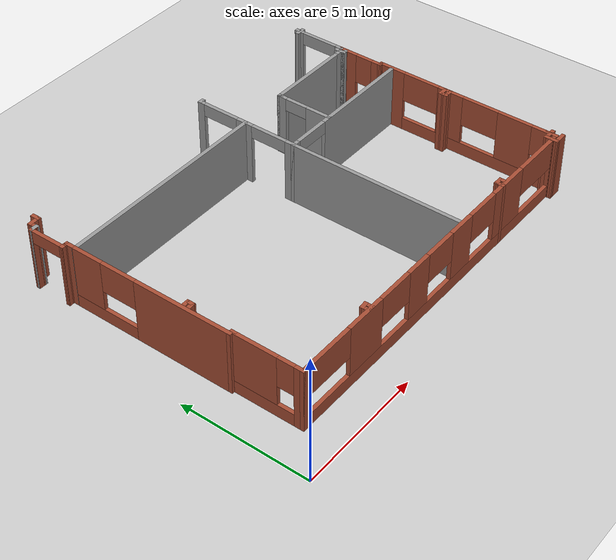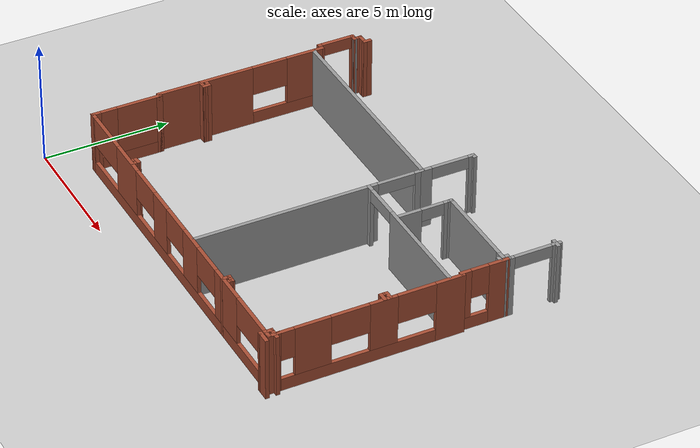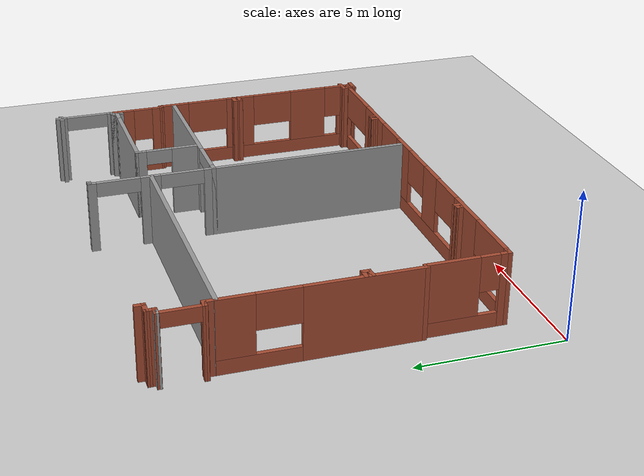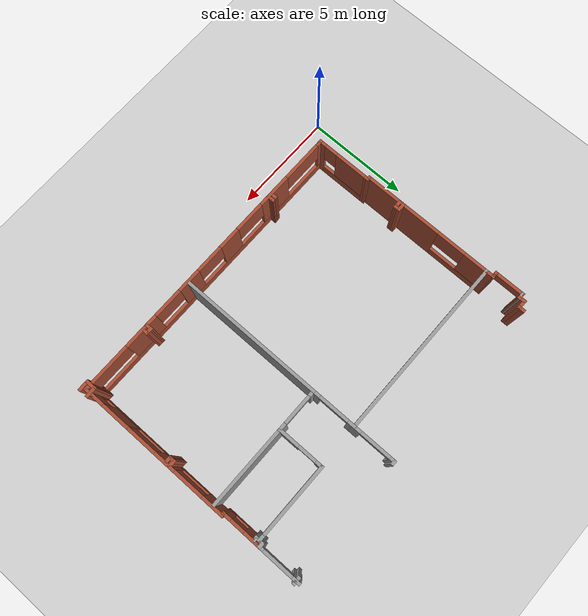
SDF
<sdf version="1.6">
 <world name="default">
  <model name="ground_plane">
   <static>1</static>
   <link name="link">
    <collision name="collision">
     <geometry><plane><normal>0 0 1</normal><size>100 100</size></plane></geometry>
     <surface><friction><ode><mu>100</mu><mu2>50</mu2></ode></friction></surface>
    </collision>
    <visual name="visual">
     <cast_shadows>0</cast_shadows>
     <geometry><plane><normal>0 0 1</normal><size>100 100</size></plane></geometry>
     <material>
      <script><uri>file://media/materials/scripts/gazebo.material</uri><name>Gazebo/Grey</name></script>
     </material>
    </visual>
   </link>
  </model>
  <model name="CVSSP">
   <pose>23.8714 24.094 0 0 -0 0</pose>
   <link name="Wall_521">
    <collision name="Wall_521_Collision">
     <geometry><box><size>0.355195 0.15 2.5</size></box></geometry>
     <pose>0 0 1.25 0 -0 0</pose>
    </collision>
    <visual name="Wall_521_Visual">
     <pose>0 0 1.25 0 -0 0</pose>
     <geometry><box><size>0.355195 0.15 2.5</size></box></geometry>
     <material>
      <script><uri>file://media/materials/scripts/gazebo.material</uri><name>Gazebo/Grey</name></script>
      <ambient>1 1 1 1</ambient>
     </material>
    </visual>
    <pose>-22.5934 -11.8574 0 0 -0 3.09357</pose>
   </link>
   <link name="Wall_537">
    <pose>-8.036 -12.4082 0 0 0 -1.5708</pose>
    <visual name="Wall_537_Visual_0">
     <pose>-0.92041 0 1.25 0 -0 0</pose>
     <geometry><box><size>0.409181 0.15 2.5</size></box></geometry>
     <material>
      <script><uri>file://media/materials/scripts/gazebo.material</uri><name>Gazebo/Grey</name></script>
      <ambient>1 1 1 1</ambient>
     </material>
    </visual>
    <collision name="Wall_537_Collision_0">
     <geometry><box><size>0.409181 0.15 2.5</size></box></geometry>
     <pose>-0.92041 0 1.25 0 -0 0</pose>
    </collision>
    <visual name="Wall_537_Visual_1">
     <pose>0.95091 0 1.25 0 -0 0</pose>
     <geometry><box><size>0.34818 0.15 2.5</size></box></geometry>
     <material>
      <script><uri>file://media/materials/scripts/gazebo.material</uri><name>Gazebo/Grey</name></script>
      <ambient>1 1 1 1</ambient>
     </material>
    </visual>
    <collision name="Wall_537_Collision_1">
     <geometry><box><size>0.34818 0.15 2.5</size></box></geometry>
     <pose>0.95091 0 1.25 0 -0 0</pose>
    </collision>
    <visual name="Wall_537_Visual_2">
     <pose>0.0305 0 2.25 0 -0 0</pose>
     <geometry><box><size>1.49264 0.15 0.5</size></box></geometry>
     <material>
      <script><uri>file://media/materials/scripts/gazebo.material</uri><name>Gazebo/Grey</name></script>
      <ambient>1 1 1 1</ambient>
     </material>
    </visual>
    <collision name="Wall_537_Collision_2">
     <geometry><box><size>1.49264 0.15 0.5</size></box></geometry>
     <pose>0.0305 0 2.25 0 -0 0</pose>
    </collision>
   </link>
   <link name="Wall_541">
    <pose>-8.03948 -14.3557 0 0 0 -1.57468</pose>
    <visual name="Wall_541_Visual_0">
     <pose>-0.567331 0 1.25 0 -0 0</pose>
     <geometry><box><size>0.810426 0.15 2.5</size></box></geometry>
     <material>
      <script><uri>file://media/materials/scripts/gazebo.material</uri><name>Gazebo/Bricks</name></script>
      <ambient>1 1 1 1</ambient>
     </material>
    </visual>
    <collision name="Wall_541_Collision_0">
     <geometry><box><size>0.810426 0.15 2.5</size></box></geometry>
     <pose>-0.567331 0 1.25 0 -0 0</pose>
    </collision>
    <visual name="Wall_541_Visual_1">
     <pose>0.405213 0 0.25 0 -0 0</pose>
     <geometry><box><size>1.13466 0.15 0.5</size></box></geometry>
     <material>
      <script><uri>file://media/materials/scripts/gazebo.material</uri><name>Gazebo/Bricks</name></script>
      <ambient>1 1 1 1</ambient>
     </material>
    </visual>
    <collision name="Wall_541_Collision_1">
     <geometry><box><size>1.13466 0.15 0.5</size></box></geometry>
     <pose>0.405213 0 0.25 0 -0 0</pose>
    </collision>
    <visual name="Wall_541_Visual_2">
     <pose>0.750947 0 1.5 0 -0 0</pose>
     <geometry><box><size>0.443194 0.15 2</size></box></geometry>
     <material>
      <script><uri>file://media/materials/scripts/gazebo.material</uri><name>Gazebo/Bricks</name></script>
      <ambient>1 1 1 1</ambient>
     </material>
    </visual>
    <collision name="Wall_541_Collision_2">
     <geometry><box><size>0.443194 0.15 2</size></box></geometry>
     <pose>0.750947 0 1.5 0 -0 0</pose>
    </collision>
    <visual name="Wall_541_Visual_3">
     <pose>0.183616 0 1.9 0 -0 0</pose>
     <geometry><box><size>0.691468 0.15 1.2</size></box></geometry>
     <material>
      <script><uri>file://media/materials/scripts/gazebo.material</uri><name>Gazebo/Bricks</name></script>
      <ambient>1 1 1 1</ambient>
     </material>
    </visual>
    <collision name="Wall_541_Collision_3">
     <geometry><box><size>0.691468 0.15 1.2</size></box></geometry>
     <pose>0.183616 0 1.9 0 -0 0</pose>
    </collision>
   </link>
   <link name="Wall_542">
    <collision name="Wall_542_Collision">
     <geometry><box><size>0.25 0.15 2.5</size></box></geometry>
     <pose>0 0 1.25 0 -0 0</pose>
    </collision>
    <visual name="Wall_542_Visual">
     <pose>0 0 1.25 0 -0 0</pose>
     <geometry><box><size>0.25 0.15 2.5</size></box></geometry>
     <material>
      <script><uri>file://media/materials/scripts/gazebo.material</uri><name>Gazebo/Bricks</name></script>
      <ambient>1 1 1 1</ambient>
     </material>
    </visual>
    <pose>-7.99297 -15.2533 0 0 -0 0</pose>
   </link>
   <link name="Wall_543">
    <pose>-7.94297 -18.8033 0 0 0 -1.5708</pose>
    <visual name="Wall_543_Visual_0">
     <pose>-3.05686 0 1.25 0 -0 0</pose>
     <geometry><box><size>1.13628 0.15 2.5</size></box></geometry>
     <material>
      <script><uri>file://media/materials/scripts/gazebo.material</uri><name>Gazebo/Bricks</name></script>
      <ambient>1 1 1 1</ambient>
     </material>
    </visual>
    <collision name="Wall_543_Collision_0">
     <geometry><box><size>1.13628 0.15 2.5</size></box></geometry>
     <pose>-3.05686 0 1.25 0 -0 0</pose>
    </collision>
    <visual name="Wall_543_Visual_1">
     <pose>0.568139 0 0.25 0 -0 0</pose>
     <geometry><box><size>6.11372 0.15 0.5</size></box></geometry>
     <material>
      <script><uri>file://media/materials/scripts/gazebo.material</uri><name>Gazebo/Bricks</name></script>
      <ambient>1 1 1 1</ambient>
     </material>
    </visual>
    <collision name="Wall_543_Collision_1">
     <geometry><box><size>6.11372 0.15 0.5</size></box></geometry>
     <pose>0.568139 0 0.25 0 -0 0</pose>
    </collision>
    <visual name="Wall_543_Visual_2">
     <pose>-0.462946 0 1.5 0 -0 0</pose>
     <geometry><box><size>1.07655 0.15 2</size></box></geometry>
     <material>
      <script><uri>file://media/materials/scripts/gazebo.material</uri><name>Gazebo/Bricks</name></script>
      <ambient>1 1 1 1</ambient>
     </material>
    </visual>
    <collision name="Wall_543_Collision_2">
     <geometry><box><size>1.07655 0.15 2</size></box></geometry>
     <pose>-0.462946 0 1.5 0 -0 0</pose>
    </collision>
    <visual name="Wall_543_Visual_3">
     <pose>2.25573 0 1.5 0 -0 0</pose>
     <geometry><box><size>1.39706 0.15 2</size></box></geometry>
     <material>
      <script><uri>file://media/materials/scripts/gazebo.material</uri><name>Gazebo/Bricks</name></script>
      <ambient>1 1 1 1</ambient>
     </material>
    </visual>
    <collision name="Wall_543_Collision_3">
     <geometry><box><size>1.39706 0.15 2</size></box></geometry>
     <pose>2.25573 0 1.5 0 -0 0</pose>
    </collision>
    <visual name="Wall_543_Visual_4">
     <pose>2.25573 0 1.5 0 -0 0</pose>
     <geometry><box><size>1.39706 0.15 2</size></box></geometry>
     <material>
      <script><uri>file://media/materials/scripts/gazebo.material</uri><name>Gazebo/Bricks</name></script>
      <ambient>1 1 1 1</ambient>
     </material>
    </visual>
    <collision name="Wall_543_Collision_4">
     <geometry><box><size>1.39706 0.15 2</size></box></geometry>
     <pose>2.25573 0 1.5 0 -0 0</pose>
    </collision>
    <visual name="Wall_543_Visual_5">
     <pose>-1.74497 0 1.9 0 -0 0</pose>
     <geometry><box><size>1.4875 0.15 1.2</size></box></geometry>
     <material>
      <script><uri>file://media/materials/scripts/gazebo.material</uri><name>Gazebo/Bricks</name></script>
      <ambient>1 1 1 1</ambient>
     </material>
    </visual>
    <collision name="Wall_543_Collision_5">
     <geometry><box><size>1.4875 0.15 1.2</size></box></geometry>
     <pose>-1.74497 0 1.9 0 -0 0</pose>
    </collision>
    <visual name="Wall_543_Visual_6">
     <pose>0.816261 0 1.9 0 -0 0</pose>
     <geometry><box><size>1.48187 0.15 1.2</size></box></geometry>
     <material>
      <script><uri>file://media/materials/scripts/gazebo.material</uri><name>Gazebo/Bricks</name></script>
      <ambient>1 1 1 1</ambient>
     </material>
    </visual>
    <collision name="Wall_543_Collision_6">
     <geometry><box><size>1.48187 0.15 1.2</size></box></geometry>
     <pose>0.816261 0 1.9 0 -0 0</pose>
    </collision>
    <visual name="Wall_543_Visual_7">
     <pose>3.28963 0 1.9 0 -0 0</pose>
     <geometry><box><size>0.670742 0.15 1.2</size></box></geometry>
     <material>
      <script><uri>file://media/materials/scripts/gazebo.material</uri><name>Gazebo/Bricks</name></script>
      <ambient>1 1 1 1</ambient>
     </material>
    </visual>
    <collision name="Wall_543_Collision_7">
     <geometry><box><size>0.670742 0.15 1.2</size></box></geometry>
     <pose>3.28963 0 1.9 0 -0 0</pose>
    </collision>
    <visual name="Wall_543_Visual_8">
     <pose>3.28963 0 1.9 0 -0 0</pose>
     <geometry><box><size>0.670742 0.15 1.2</size></box></geometry>
     <material>
      <script><uri>file://media/materials/scripts/gazebo.material</uri><name>Gazebo/Bricks</name></script>
      <ambient>1 1 1 1</ambient>
     </material>
    </visual>
    <collision name="Wall_543_Collision_8">
     <geometry><box><size>0.670742 0.15 1.2</size></box></geometry>
     <pose>3.28963 0 1.9 0 -0 0</pose>
    </collision>
   </link>
   <link name="Wall_544">
    <collision name="Wall_544_Collision">
     <geometry><box><size>0.5 0.15 2.5</size></box></geometry>
     <pose>0 0 1.25 0 -0 0</pose>
    </collision>
    <visual name="Wall_544_Visual">
     <pose>0 0 1.25 0 -0 0</pose>
     <geometry><box><size>0.5 0.15 2.5</size></box></geometry>
     <material>
      <script><uri>file://media/materials/scripts/gazebo.material</uri><name>Gazebo/Bricks</name></script>
      <ambient>1 1 1 1</ambient>
     </material>
    </visual>
    <pose>-7.94297 -22.5283 0 0 0 -1.5708</pose>
   </link>
   <link name="Wall_545">
    <pose>-15.118 -22.7033 0 0 -0 3.14159</pose>
    <visual name="Wall_545_Visual_0">
     <pose>-7.03884 0 1.25 0 -0 0</pose>
     <geometry><box><size>0.42232 0.15 2.5</size></box></geometry>
     <material>
      <script><uri>file://media/materials/scripts/gazebo.material</uri><name>Gazebo/Bricks</name></script>
      <ambient>1 1 1 1</ambient>
     </material>
    </visual>
    <collision name="Wall_545_Collision_0">
     <geometry><box><size>0.42232 0.15 2.5</size></box></geometry>
     <pose>-7.03884 0 1.25 0 -0 0</pose>
    </collision>
    <visual name="Wall_545_Visual_1">
     <pose>0.21116 0 0.25 0 -0 0</pose>
     <geometry><box><size>14.0777 0.15 0.5</size></box></geometry>
     <material>
      <script><uri>file://media/materials/scripts/gazebo.material</uri><name>Gazebo/Bricks</name></script>
      <ambient>1 1 1 1</ambient>
     </material>
    </visual>
    <collision name="Wall_545_Collision_1">
     <geometry><box><size>14.0777 0.15 0.5</size></box></geometry>
     <pose>0.21116 0 0.25 0 -0 0</pose>
    </collision>
    <visual name="Wall_545_Visual_2">
     <pose>-3.98026 0 1.5 0 -0 0</pose>
     <geometry><box><size>1.72991 0.15 2</size></box></geometry>
     <material>
      <script><uri>file://media/materials/scripts/gazebo.material</uri><name>Gazebo/Bricks</name></script>
      <ambient>1 1 1 1</ambient>
     </material>
    </visual>
    <collision name="Wall_545_Collision_2">
     <geometry><box><size>1.72991 0.15 2</size></box></geometry>
     <pose>-3.98026 0 1.5 0 -0 0</pose>
    </collision>
    <visual name="Wall_545_Visual_3">
     <pose>-1.12108 0 1.5 0 -0 0</pose>
     <geometry><box><size>1.14417 0.15 2</size></box></geometry>
     <material>
      <script><uri>file://media/materials/scripts/gazebo.material</uri><name>Gazebo/Bricks</name></script>
      <ambient>1 1 1 1</ambient>
     </material>
    </visual>
    <collision name="Wall_545_Collision_3">
     <geometry><box><size>1.14417 0.15 2</size></box></geometry>
     <pose>-1.12108 0 1.5 0 -0 0</pose>
    </collision>
    <visual name="Wall_545_Visual_4">
     <pose>1.34801 0 1.5 0 -0 0</pose>
     <geometry><box><size>1.07936 0.15 2</size></box></geometry>
     <material>
      <script><uri>file://media/materials/scripts/gazebo.material</uri><name>Gazebo/Bricks</name></script>
      <ambient>1 1 1 1</ambient>
     </material>
    </visual>
    <collision name="Wall_545_Collision_4">
     <geometry><box><size>1.07936 0.15 2</size></box></geometry>
     <pose>1.34801 0 1.5 0 -0 0</pose>
    </collision>
    <visual name="Wall_545_Visual_5">
     <pose>4.2027 0 1.5 0 -0 0</pose>
     <geometry><box><size>1.66909 0.15 2</size></box></geometry>
     <material>
      <script><uri>file://media/materials/scripts/gazebo.material</uri><name>Gazebo/Bricks</name></script>
      <ambient>1 1 1 1</ambient>
     </material>
    </visual>
    <collision name="Wall_545_Collision_5">
     <geometry><box><size>1.66909 0.15 2</size></box></geometry>
     <pose>4.2027 0 1.5 0 -0 0</pose>
    </collision>
    <visual name="Wall_545_Visual_6">
     <pose>7.13335 0 1.5 0 -0 0</pose>
     <geometry><box><size>0.233292 0.15 2</size></box></geometry>
     <material>
      <script><uri>file://media/materials/scripts/gazebo.material</uri><name>Gazebo/Bricks</name></script>
      <ambient>1 1 1 1</ambient>
     </material>
    </visual>
    <collision name="Wall_545_Collision_6">
     <geometry><box><size>0.233292 0.15 2</size></box></geometry>
     <pose>7.13335 0 1.5 0 -0 0</pose>
    </collision>
    <visual name="Wall_545_Visual_7">
     <pose>-5.83645 0 1.9 0 -0 0</pose>
     <geometry><box><size>1.98247 0.15 1.2</size></box></geometry>
     <material>
      <script><uri>file://media/materials/scripts/gazebo.material</uri><name>Gazebo/Bricks</name></script>
      <ambient>1 1 1 1</ambient>
     </material>
    </visual>
    <collision name="Wall_545_Collision_7">
     <geometry><box><size>1.98247 0.15 1.2</size></box></geometry>
     <pose>-5.83645 0 1.9 0 -0 0</pose>
    </collision>
    <visual name="Wall_545_Visual_8">
     <pose>-2.40424 0 1.9 0 -0 0</pose>
     <geometry><box><size>1.42213 0.15 1.2</size></box></geometry>
     <material>
      <script><uri>file://media/materials/scripts/gazebo.material</uri><name>Gazebo/Bricks</name></script>
      <ambient>1 1 1 1</ambient>
     </material>
    </visual>
    <collision name="Wall_545_Collision_8">
     <geometry><box><size>1.42213 0.15 1.2</size></box></geometry>
     <pose>-2.40424 0 1.9 0 -0 0</pose>
    </collision>
    <visual name="Wall_545_Visual_9">
     <pose>0.129664 0 1.9 0 -0 0</pose>
     <geometry><box><size>1.35733 0.15 1.2</size></box></geometry>
     <material>
      <script><uri>file://media/materials/scripts/gazebo.material</uri><name>Gazebo/Bricks</name></script>
      <ambient>1 1 1 1</ambient>
     </material>
    </visual>
    <collision name="Wall_545_Collision_9">
     <geometry><box><size>1.35733 0.15 1.2</size></box></geometry>
     <pose>0.129664 0 1.9 0 -0 0</pose>
    </collision>
    <visual name="Wall_545_Visual_10">
     <pose>2.62792 0 1.9 0 -0 0</pose>
     <geometry><box><size>1.48046 0.15 1.2</size></box></geometry>
     <material>
      <script><uri>file://media/materials/scripts/gazebo.material</uri><name>Gazebo/Bricks</name></script>
      <ambient>1 1 1 1</ambient>
     </material>
    </visual>
    <collision name="Wall_545_Collision_10">
     <geometry><box><size>1.48046 0.15 1.2</size></box></geometry>
     <pose>2.62792 0 1.9 0 -0 0</pose>
    </collision>
    <visual name="Wall_545_Visual_11">
     <pose>6.02698 0 1.9 0 -0 0</pose>
     <geometry><box><size>1.97946 0.15 1.2</size></box></geometry>
     <material>
      <script><uri>file://media/materials/scripts/gazebo.material</uri><name>Gazebo/Bricks</name></script>
      <ambient>1 1 1 1</ambient>
     </material>
    </visual>
    <collision name="Wall_545_Collision_11">
     <geometry><box><size>1.97946 0.15 1.2</size></box></geometry>
     <pose>6.02698 0 1.9 0 -0 0</pose>
    </collision>
   </link>
   <link name="Wall_546">
    <collision name="Wall_546_Collision">
     <geometry><box><size>0.25 0.15 2.5</size></box></geometry>
     <pose>0 0 1.25 0 -0 0</pose>
    </collision>
    <visual name="Wall_546_Visual">
     <pose>0 0 1.25 0 -0 0</pose>
     <geometry><box><size>0.25 0.15 2.5</size></box></geometry>
     <material>
      <script><uri>file://media/materials/scripts/gazebo.material</uri><name>Gazebo/Bricks</name></script>
      <ambient>1 1 1 1</ambient>
     </material>
    </visual>
    <pose>-22.343 -22.7033 0 0 -0 3.14159</pose>
   </link>
   <link name="Wall_547">
    <pose>-22.393 -21.4033 0 0 -0 1.5708</pose>
    <visual name="Wall_547_Visual_0">
     <pose>-1.18725 0 1.25 0 -0 0</pose>
     <geometry><box><size>0.375498 0.15 2.5</size></box></geometry>
     <material>
      <script><uri>file://media/materials/scripts/gazebo.material</uri><name>Gazebo/Bricks</name></script>
      <ambient>1 1 1 1</ambient>
     </material>
    </visual>
    <collision name="Wall_547_Collision_0">
     <geometry><box><size>0.375498 0.15 2.5</size></box></geometry>
     <pose>-1.18725 0 1.25 0 -0 0</pose>
    </collision>
    <visual name="Wall_547_Visual_1">
     <pose>0.187749 0 0.25 0 -0 0</pose>
     <geometry><box><size>2.3745 0.15 0.5</size></box></geometry>
     <material>
      <script><uri>file://media/materials/scripts/gazebo.material</uri><name>Gazebo/Bricks</name></script>
      <ambient>1 1 1 1</ambient>
     </material>
    </visual>
    <collision name="Wall_547_Collision_1">
     <geometry><box><size>2.3745 0.15 0.5</size></box></geometry>
     <pose>0.187749 0 0.25 0 -0 0</pose>
    </collision>
    <visual name="Wall_547_Visual_2">
     <pose>0.509982 0 1.5 0 -0 0</pose>
     <geometry><box><size>1.73004 0.15 2</size></box></geometry>
     <material>
      <script><uri>file://media/materials/scripts/gazebo.material</uri><name>Gazebo/Bricks</name></script>
      <ambient>1 1 1 1</ambient>
     </material>
    </visual>
    <collision name="Wall_547_Collision_2">
     <geometry><box><size>1.73004 0.15 2</size></box></geometry>
     <pose>0.509982 0 1.5 0 -0 0</pose>
    </collision>
    <visual name="Wall_547_Visual_3">
     <pose>-0.677269 0 1.9 0 -0 0</pose>
     <geometry><box><size>0.644466 0.15 1.2</size></box></geometry>
     <material>
      <script><uri>file://media/materials/scripts/gazebo.material</uri><name>Gazebo/Bricks</name></script>
      <ambient>1 1 1 1</ambient>
     </material>
    </visual>
    <collision name="Wall_547_Collision_3">
     <geometry><box><size>0.644466 0.15 1.2</size></box></geometry>
     <pose>-0.677269 0 1.9 0 -0 0</pose>
    </collision>
   </link>
   <link name="Wall_548">
    <collision name="Wall_548_Collision">
     <geometry><box><size>0.25 0.15 2.5</size></box></geometry>
     <pose>0 0 1.25 0 -0 0</pose>
    </collision>
    <visual name="Wall_548_Visual">
     <pose>0 0 1.25 0 -0 0</pose>
     <geometry><box><size>0.25 0.15 2.5</size></box></geometry>
     <material>
      <script><uri>file://media/materials/scripts/gazebo.material</uri><name>Gazebo/Bricks</name></script>
      <ambient>1 1 1 1</ambient>
     </material>
    </visual>
    <pose>-22.393 -20.0533 0 0 -0 1.5708</pose>
   </link>
   <link name="Wall_549">
    <collision name="Wall_549_Collision">
     <geometry><box><size>0.25 0.15 2.5</size></box></geometry>
     <pose>0 0 1.25 0 -0 0</pose>
    </collision>
    <visual name="Wall_549_Visual">
     <pose>0 0 1.25 0 -0 0</pose>
     <geometry><box><size>0.25 0.15 2.5</size></box></geometry>
     <material>
      <script><uri>file://media/materials/scripts/gazebo.material</uri><name>Gazebo/Bricks</name></script>
      <ambient>1 1 1 1</ambient>
     </material>
    </visual>
    <pose>-22.443 -20.0033 0 0 -0 3.14159</pose>
   </link>
   <link name="Wall_550">
    <pose>-22.493 -16.8108 0 0 -0 1.5708</pose>
    <visual name="Wall_550_Visual_0">
     <pose>-1.31523 0 1.25 0 -0 0</pose>
     <geometry><box><size>3.90453 0.15 2.5</size></box></geometry>
     <material>
      <script><uri>file://media/materials/scripts/gazebo.material</uri><name>Gazebo/Bricks</name></script>
      <ambient>1 1 1 1</ambient>
     </material>
    </visual>
    <collision name="Wall_550_Collision_0">
     <geometry><box><size>3.90453 0.15 2.5</size></box></geometry>
     <pose>-1.31523 0 1.25 0 -0 0</pose>
    </collision>
    <visual name="Wall_550_Visual_1">
     <pose>1.95226 0 0.25 0 -0 0</pose>
     <geometry><box><size>2.63045 0.15 0.5</size></box></geometry>
     <material>
      <script><uri>file://media/materials/scripts/gazebo.material</uri><name>Gazebo/Bricks</name></script>
      <ambient>1 1 1 1</ambient>
     </material>
    </visual>
    <collision name="Wall_550_Collision_1">
     <geometry><box><size>2.63045 0.15 0.5</size></box></geometry>
     <pose>1.95226 0 0.25 0 -0 0</pose>
    </collision>
    <visual name="Wall_550_Visual_2">
     <pose>2.66009 0 1.5 0 -0 0</pose>
     <geometry><box><size>1.2148 0.15 2</size></box></geometry>
     <material>
      <script><uri>file://media/materials/scripts/gazebo.material</uri><name>Gazebo/Bricks</name></script>
      <ambient>1 1 1 1</ambient>
     </material>
    </visual>
    <collision name="Wall_550_Collision_2">
     <geometry><box><size>1.2148 0.15 2</size></box></geometry>
     <pose>2.66009 0 1.5 0 -0 0</pose>
    </collision>
    <visual name="Wall_550_Visual_3">
     <pose>1.34487 0 1.9 0 -0 0</pose>
     <geometry><box><size>1.41565 0.15 1.2</size></box></geometry>
     <material>
      <script><uri>file://media/materials/scripts/gazebo.material</uri><name>Gazebo/Bricks</name></script>
      <ambient>1 1 1 1</ambient>
     </material>
    </visual>
    <collision name="Wall_550_Collision_3">
     <geometry><box><size>1.41565 0.15 1.2</size></box></geometry>
     <pose>1.34487 0 1.9 0 -0 0</pose>
    </collision>
   </link>
   <link name="Wall_551">
    <collision name="Wall_551_Collision">
     <geometry><box><size>8.71502 0.15 2.5</size></box></geometry>
     <pose>0 0 1.25 0 -0 0</pose>
    </collision>
    <visual name="Wall_551_Visual">
     <pose>0 0 1.25 0 -0 0</pose>
     <geometry><box><size>8.71502 0.15 2.5</size></box></geometry>
     <material>
      <script><uri>file://media/materials/scripts/gazebo.material</uri><name>Gazebo/Grey</name></script>
      <ambient>0.588235 0.588235 0.588235 1</ambient>
     </material>
    </visual>
    <pose>-18.2105 -13.6008 0 0 -0 0</pose>
   </link>
   <link name="Wall_552">
    <pose>-13.9279 -14.6858 0 0 0 -1.57076</pose>
    <visual name="Wall_552_Visual_0">
     <pose>-0.953762 0 1.25 0 -0 0</pose>
     <geometry><box><size>0.377528 0.15 2.5</size></box></geometry>
     <material>
      <script><uri>file://media/materials/scripts/gazebo.material</uri><name>Gazebo/Grey</name></script>
      <ambient>0.588235 0.588235 0.588235 1</ambient>
     </material>
    </visual>
    <collision name="Wall_552_Collision_0">
     <geometry><box><size>0.377528 0.15 2.5</size></box></geometry>
     <pose>-0.953762 0 1.25 0 -0 0</pose>
    </collision>
    <visual name="Wall_552_Visual_1">
     <pose>0.934646 0 1.25 0 -0 0</pose>
     <geometry><box><size>0.415759 0.15 2.5</size></box></geometry>
     <material>
      <script><uri>file://media/materials/scripts/gazebo.material</uri><name>Gazebo/Grey</name></script>
      <ambient>0.588235 0.588235 0.588235 1</ambient>
     </material>
    </visual>
    <collision name="Wall_552_Collision_1">
     <geometry><box><size>0.415759 0.15 2.5</size></box></geometry>
     <pose>0.934646 0 1.25 0 -0 0</pose>
    </collision>
    <visual name="Wall_552_Visual_2">
     <pose>-0.019115 0 2.25 0 -0 0</pose>
     <geometry><box><size>1.49176 0.15 0.5</size></box></geometry>
     <material>
      <script><uri>file://media/materials/scripts/gazebo.material</uri><name>Gazebo/Grey</name></script>
      <ambient>0.588235 0.588235 0.588235 1</ambient>
     </material>
    </visual>
    <collision name="Wall_552_Collision_2">
     <geometry><box><size>1.49176 0.15 0.5</size></box></geometry>
     <pose>-0.019115 0 2.25 0 -0 0</pose>
    </collision>
   </link>
   <link name="Wall_553">
    <pose>-10.9854 -15.7533 0 0 0 -3e-06</pose>
    <visual name="Wall_553_Visual_0">
     <pose>-2.85002 0 1.25 0 -0 0</pose>
     <geometry><box><size>0.334935 0.15 2.5</size></box></geometry>
     <material>
      <script><uri>file://media/materials/scripts/gazebo.material</uri><name>Gazebo/Grey</name></script>
      <ambient>0.588235 0.588235 0.588235 1</ambient>
     </material>
    </visual>
    <collision name="Wall_553_Collision_0">
     <geometry><box><size>0.334935 0.15 2.5</size></box></geometry>
     <pose>-2.85002 0 1.25 0 -0 0</pose>
    </collision>
    <visual name="Wall_553_Visual_1">
     <pose>0.893624 0 1.25 0 -0 0</pose>
     <geometry><box><size>4.24773 0.15 2.5</size></box></geometry>
     <material>
      <script><uri>file://media/materials/scripts/gazebo.material</uri><name>Gazebo/Grey</name></script>
      <ambient>0.588235 0.588235 0.588235 1</ambient>
     </material>
    </visual>
    <collision name="Wall_553_Collision_1">
     <geometry><box><size>4.24773 0.15 2.5</size></box></geometry>
     <pose>0.893624 0 1.25 0 -0 0</pose>
    </collision>
    <visual name="Wall_553_Visual_2">
     <pose>-1.9564 0 2.25 0 -0 0</pose>
     <geometry><box><size>1.45231 0.15 0.5</size></box></geometry>
     <material>
      <script><uri>file://media/materials/scripts/gazebo.material</uri><name>Gazebo/Grey</name></script>
      <ambient>0.588235 0.588235 0.588235 1</ambient>
     </material>
    </visual>
    <collision name="Wall_553_Collision_2">
     <geometry><box><size>1.45231 0.15 0.5</size></box></geometry>
     <pose>-1.9564 0 2.25 0 -0 0</pose>
    </collision>
   </link>
   <link name="Wall_555">
    <pose>-13.9279 -12.5683 0 0 -0 1.5708</pose>
    <visual name="Wall_555_Visual_0">
     <pose>-0.893147 0 1.25 0 -0 0</pose>
     <geometry><box><size>0.463706 0.15 2.5</size></box></geometry>
     <material>
      <script><uri>file://media/materials/scripts/gazebo.material</uri><name>Gazebo/Grey</name></script>
      <ambient>0.588235 0.588235 0.588235 1</ambient>
     </material>
    </visual>
    <collision name="Wall_555_Collision_0">
     <geometry><box><size>0.463706 0.15 2.5</size></box></geometry>
     <pose>-0.893147 0 1.25 0 -0 0</pose>
    </collision>
    <visual name="Wall_555_Visual_1">
     <pose>0.977735 0 1.25 0 -0 0</pose>
     <geometry><box><size>0.29453 0.15 2.5</size></box></geometry>
     <material>
      <script><uri>file://media/materials/scripts/gazebo.material</uri><name>Gazebo/Grey</name></script>
      <ambient>0.588235 0.588235 0.588235 1</ambient>
     </material>
    </visual>
    <collision name="Wall_555_Collision_1">
     <geometry><box><size>0.29453 0.15 2.5</size></box></geometry>
     <pose>0.977735 0 1.25 0 -0 0</pose>
    </collision>
    <visual name="Wall_555_Visual_2">
     <pose>0.084588 0 2.25 0 -0 0</pose>
     <geometry><box><size>1.49177 0.15 0.5</size></box></geometry>
     <material>
      <script><uri>file://media/materials/scripts/gazebo.material</uri><name>Gazebo/Grey</name></script>
      <ambient>0.588235 0.588235 0.588235 1</ambient>
     </material>
    </visual>
    <collision name="Wall_555_Collision_2">
     <geometry><box><size>1.49177 0.15 0.5</size></box></geometry>
     <pose>0.084588 0 2.25 0 -0 0</pose>
    </collision>
   </link>
   <link name="Wall_556">
    <collision name="Wall_556_Collision">
     <geometry><box><size>0.25 0.15 2.5</size></box></geometry>
     <pose>0 0 1.25 0 -0 0</pose>
    </collision>
    <visual name="Wall_556_Visual">
     <pose>0 0 1.25 0 -0 0</pose>
     <geometry><box><size>0.25 0.15 2.5</size></box></geometry>
     <material>
      <script><uri>file://media/materials/scripts/gazebo.material</uri><name>Gazebo/Grey</name></script>
      <ambient>1 1 1 1</ambient>
     </material>
    </visual>
    <pose>-13.8779 -11.5183 0 0 -0 0</pose>
   </link>
   <link name="Wall_566">
    <pose>-11.8858 -14.6877 0 0 -0 1.5708</pose>
    <visual name="Wall_566_Visual_0">
     <pose>-0.599474 0 1.25 0 -0 0</pose>
     <geometry><box><size>1.05105 0.15 2.5</size></box></geometry>
     <material>
      <script><uri>file://media/materials/scripts/gazebo.material</uri><name>Gazebo/Grey</name></script>
      <ambient>0.588235 0.588235 0.588235 1</ambient>
     </material>
    </visual>
    <collision name="Wall_566_Collision_0">
     <geometry><box><size>1.05105 0.15 2.5</size></box></geometry>
     <pose>-0.599474 0 1.25 0 -0 0</pose>
    </collision>
    <visual name="Wall_566_Visual_1">
     <pose>0.975526 0 1.25 0 -0 0</pose>
     <geometry><box><size>0.298948 0.15 2.5</size></box></geometry>
     <material>
      <script><uri>file://media/materials/scripts/gazebo.material</uri><name>Gazebo/Grey</name></script>
      <ambient>0.588235 0.588235 0.588235 1</ambient>
     </material>
    </visual>
    <collision name="Wall_566_Collision_1">
     <geometry><box><size>0.298948 0.15 2.5</size></box></geometry>
     <pose>0.975526 0 1.25 0 -0 0</pose>
    </collision>
    <visual name="Wall_566_Visual_2">
     <pose>0.376052 0 2.25 0 -0 0</pose>
     <geometry><box><size>0.9 0.15 0.5</size></box></geometry>
     <material>
      <script><uri>file://media/materials/scripts/gazebo.material</uri><name>Gazebo/Grey</name></script>
      <ambient>0.588235 0.588235 0.588235 1</ambient>
     </material>
    </visual>
    <collision name="Wall_566_Collision_2">
     <geometry><box><size>0.9 0.15 0.5</size></box></geometry>
     <pose>0.376052 0 2.25 0 -0 0</pose>
    </collision>
   </link>
   <link name="Wall_567">
    <collision name="Wall_567_Collision">
     <geometry><box><size>0.25 0.15 2.5</size></box></geometry>
     <pose>0 0 1.25 0 -0 0</pose>
    </collision>
    <visual name="Wall_567_Visual">
     <pose>0 0 1.25 0 -0 0</pose>
     <geometry><box><size>0.25 0.15 2.5</size></box></geometry>
     <material>
      <script><uri>file://media/materials/scripts/gazebo.material</uri><name>Gazebo/Grey</name></script>
      <ambient>1 1 1 1</ambient>
     </material>
    </visual>
    <pose>-11.8858 -13.5877 0 0 -0 1.5708</pose>
   </link>
   <link name="Wall_568">
    <collision name="Wall_568_Collision">
     <geometry><box><size>3.5 0.15 2.5</size></box></geometry>
     <pose>0 0 1.25 0 -0 0</pose>
    </collision>
    <visual name="Wall_568_Visual">
     <pose>0 0 1.25 0 -0 0</pose>
     <geometry><box><size>3.5 0.15 2.5</size></box></geometry>
     <material>
      <script><uri>file://media/materials/scripts/gazebo.material</uri><name>Gazebo/Grey</name></script>
      <ambient>0.588235 0.588235 0.588235 1</ambient>
     </material>
    </visual>
    <pose>-10.2108 -13.5377 0 0 -0 0</pose>
   </link>
   <link name="Wall_569">
    <collision name="Wall_569_Collision">
     <geometry><box><size>0.476583 0.15 2.5</size></box></geometry>
     <pose>0 0 1.25 0 -0 0</pose>
    </collision>
    <visual name="Wall_569_Visual">
     <pose>0 0 1.25 0 -0 0</pose>
     <geometry><box><size>0.476583 0.15 2.5</size></box></geometry>
     <material>
      <script><uri>file://media/materials/scripts/gazebo.material</uri><name>Gazebo/Grey</name></script>
      <ambient>1 1 1 1</ambient>
     </material>
    </visual>
    <pose>-8.37248 -13.54 0 0 0 -0.014239</pose>
   </link>
   <link name="Wall_570">
    <collision name="Wall_570_Collision">
     <geometry><box><size>0.307067 0.15 2.5</size></box></geometry>
     <pose>0 0 1.25 0 -0 0</pose>
    </collision>
    <visual name="Wall_570_Visual">
     <pose>0 0 1.25 0 -0 0</pose>
     <geometry><box><size>0.307067 0.15 2.5</size></box></geometry>
     <material>
      <script><uri>file://media/materials/scripts/gazebo.material</uri><name>Gazebo/Grey</name></script>
      <ambient>1 1 1 1</ambient>
     </material>
    </visual>
    <pose>-8.20921 -13.6208 0 0 0 -1.5708</pose>
   </link>
   <link name="Wall_571">
    <collision name="Wall_571_Collision">
     <geometry><box><size>0.25 0.15 2.5</size></box></geometry>
     <pose>0 0 1.25 0 -0 0</pose>
    </collision>
    <visual name="Wall_571_Visual">
     <pose>0 0 1.25 0 -0 0</pose>
     <geometry><box><size>0.25 0.15 2.5</size></box></geometry>
     <material>
      <script><uri>file://media/materials/scripts/gazebo.material</uri><name>Gazebo/Grey</name></script>
      <ambient>1 1 1 1</ambient>
     </material>
    </visual>
    <pose>-8.15921 -13.695 0 0 -0 0</pose>
   </link>
   <link name="Wall_575">
    <collision name="Wall_575_Collision">
     <geometry><box><size>0.275673 0.15 2.5</size></box></geometry>
     <pose>0 0 1.25 0 -0 0</pose>
    </collision>
    <visual name="Wall_575_Visual">
     <pose>0 0 1.25 0 -0 0</pose>
     <geometry><box><size>0.275673 0.15 2.5</size></box></geometry>
     <material>
      <script><uri>file://media/materials/scripts/gazebo.material</uri><name>Gazebo/Grey</name></script>
      <ambient>1 1 1 1</ambient>
     </material>
    </visual>
    <pose>-8.20032 -13.4387 0 0 -0 1.5708</pose>
   </link>
   <link name="Wall_576">
    <collision name="Wall_576_Collision">
     <geometry><box><size>0.309961 0.15 2.5</size></box></geometry>
     <pose>0 0 1.25 0 -0 0</pose>
    </collision>
    <visual name="Wall_576_Visual">
     <pose>0 0 1.25 0 -0 0</pose>
     <geometry><box><size>0.309961 0.15 2.5</size></box></geometry>
     <material>
      <script><uri>file://media/materials/scripts/gazebo.material</uri><name>Gazebo/Grey</name></script>
      <ambient>1 1 1 1</ambient>
     </material>
    </visual>
    <pose>-8.12034 -13.3761 0 0 -0 0</pose>
   </link>
   <link name="Wall_578">
    <collision name="Wall_578_Collision">
     <geometry><box><size>7 0.15 2.5</size></box></geometry>
     <pose>0 0 1.25 0 -0 0</pose>
    </collision>
    <visual name="Wall_578_Visual">
     <pose>0 0 1.25 0 -0 0</pose>
     <geometry><box><size>7 0.15 2.5</size></box></geometry>
     <material>
      <script><uri>file://media/materials/scripts/gazebo.material</uri><name>Gazebo/Grey</name></script>
      <ambient>0.588235 0.588235 0.588235 1</ambient>
     </material>
    </visual>
    <pose>-13.9279 -19.1783 0 0 0 -1.5708</pose>
   </link>
   <link name="Wall_580">
    <collision name="Wall_580_Collision">
     <geometry><box><size>0.5 0.15 2.5</size></box></geometry>
     <pose>0 0 1.25 0 -0 0</pose>
    </collision>
    <visual name="Wall_580_Visual">
     <pose>0 0 1.25 0 -0 0</pose>
     <geometry><box><size>0.5 0.15 2.5</size></box></geometry>
     <material>
      <script><uri>file://media/materials/scripts/gazebo.material</uri><name>Gazebo/Bricks</name></script>
      <ambient>1 1 1 1</ambient>
     </material>
    </visual>
    <pose>-22.493 -13.4258 0 0 -0 1.5708</pose>
   </link>
   <link name="Wall_581">
    <collision name="Wall_581_Collision">
     <geometry><box><size>0.348832 0.15 2.5</size></box></geometry>
     <pose>0 0 1.25 0 -0 0</pose>
    </collision>
    <visual name="Wall_581_Visual">
     <pose>0 0 1.25 0 -0 0</pose>
     <geometry><box><size>0.348832 0.15 2.5</size></box></geometry>
     <material>
      <script><uri>file://media/materials/scripts/gazebo.material</uri><name>Gazebo/Bricks</name></script>
      <ambient>1 1 1 1</ambient>
     </material>
    </visual>
    <pose>-22.5923 -13.2456 0 0 -0 3.0892</pose>
   </link>
   <link name="Wall_582">
    <pose>-22.6937 -12.553 0 0 -0 1.57386</pose>
    <visual name="Wall_582_Visual_0">
     <pose>-0.687932 0 1.25 0 -0 0</pose>
     <geometry><box><size>0.162022 0.15 2.5</size></box></geometry>
     <material>
      <script><uri>file://media/materials/scripts/gazebo.material</uri><name>Gazebo/Bricks</name></script>
      <ambient>1 1 1 1</ambient>
     </material>
    </visual>
    <collision name="Wall_582_Collision_0">
     <geometry><box><size>0.162022 0.15 2.5</size></box></geometry>
     <pose>-0.687932 0 1.25 0 -0 0</pose>
    </collision>
    <visual name="Wall_582_Visual_1">
     <pose>0.695242 0 1.25 0 -0 0</pose>
     <geometry><box><size>0.147402 0.15 2.5</size></box></geometry>
     <material>
      <script><uri>file://media/materials/scripts/gazebo.material</uri><name>Gazebo/Bricks</name></script>
      <ambient>1 1 1 1</ambient>
     </material>
    </visual>
    <collision name="Wall_582_Collision_1">
     <geometry><box><size>0.147402 0.15 2.5</size></box></geometry>
     <pose>0.695242 0 1.25 0 -0 0</pose>
    </collision>
    <visual name="Wall_582_Visual_2">
     <pose>0.00731 0 2.25 0 -0 0</pose>
     <geometry><box><size>1.22846 0.15 0.5</size></box></geometry>
     <material>
      <script><uri>file://media/materials/scripts/gazebo.material</uri><name>Gazebo/Bricks</name></script>
      <ambient>1 1 1 1</ambient>
     </material>
    </visual>
    <collision name="Wall_582_Collision_2">
     <geometry><box><size>1.22846 0.15 0.5</size></box></geometry>
     <pose>0.00731 0 2.25 0 -0 0</pose>
    </collision>
   </link>
   <link name="Wall_783">
    <collision name="Wall_783_Collision">
     <geometry><box><size>0.362802 0.15 2.5</size></box></geometry>
     <pose>0 0 1.25 0 -0 0</pose>
    </collision>
    <visual name="Wall_783_Visual">
     <pose>0 0 1.25 0 -0 0</pose>
     <geometry><box><size>0.362802 0.15 2.5</size></box></geometry>
     <material>
      <script><uri>file://media/materials/scripts/gazebo.material</uri><name>Gazebo/Bricks</name></script>
      <ambient>1 1 1 1</ambient>
     </material>
    </visual>
    <pose>-22.1585 -11.5064 0 0 0 -1.5708</pose>
   </link>
   <link name="Wall_784">
    <collision name="Wall_784_Collision">
     <geometry><box><size>0.495803 0.15 2.5</size></box></geometry>
     <pose>0 0 1.25 0 -0 0</pose>
    </collision>
    <visual name="Wall_784_Visual">
     <pose>0 0 1.25 0 -0 0</pose>
     <geometry><box><size>0.495803 0.15 2.5</size></box></geometry>
     <material>
      <script><uri>file://media/materials/scripts/gazebo.material</uri><name>Gazebo/Bricks</name></script>
      <ambient>1 1 1 1</ambient>
     </material>
    </visual>
    <pose>-22.3314 -11.6128 0 0 -0 3.14159</pose>
   </link>
   <link name="Wall_785">
    <collision name="Wall_785_Collision">
     <geometry><box><size>0.399947 0.15 2.5</size></box></geometry>
     <pose>0 0 1.25 0 -0 0</pose>
    </collision>
    <visual name="Wall_785_Visual">
     <pose>0 0 1.25 0 -0 0</pose>
     <geometry><box><size>0.399947 0.15 2.5</size></box></geometry>
     <material>
      <script><uri>file://media/materials/scripts/gazebo.material</uri><name>Gazebo/Bricks</name></script>
      <ambient>1 1 1 1</ambient>
     </material>
    </visual>
    <pose>-22.4976 -11.7376 0 0 0 -1.51707</pose>
   </link>
   <link name="Wall_786">
    <collision name="Wall_786_Collision">
     <geometry><box><size>0.354983 0.15 2.5</size></box></geometry>
     <pose>0 0 1.25 0 -0 0</pose>
    </collision>
    <visual name="Wall_786_Visual">
     <pose>0 0 1.25 0 -0 0</pose>
     <geometry><box><size>0.354983 0.15 2.5</size></box></geometry>
     <material>
      <script><uri>file://media/materials/scripts/gazebo.material</uri><name>Gazebo/Bricks</name></script>
      <ambient>1 1 1 1</ambient>
     </material>
    </visual>
    <pose>-22.5934 -11.8607 0 0 -0 3.12561</pose>
   </link>
   <link name="Wall_823">
    <collision name="Wall_823_Collision">
     <geometry><box><size>0.378662 0.15 2.5</size></box></geometry>
     <pose>0 0 1.25 0 -0 0</pose>
    </collision>
    <visual name="Wall_823_Visual">
     <pose>0 0 1.25 0 -0 0</pose>
     <geometry><box><size>0.378662 0.15 2.5</size></box></geometry>
     <material>
      <script><uri>file://media/materials/scripts/gazebo.material</uri><name>Gazebo/Bricks</name></script>
      <ambient>1 1 1 1</ambient>
     </material>
    </visual>
    <pose>-8.09894 -18.0783 0 0 -0 3.14159</pose>
   </link>
   <link name="Wall_824">
    <collision name="Wall_824_Collision">
     <geometry><box><size>0.361804 0.15 2.5</size></box></geometry>
     <pose>0 0 1.25 0 -0 0</pose>
    </collision>
    <visual name="Wall_824_Visual">
     <pose>0 0 1.25 0 -0 0</pose>
     <geometry><box><size>0.361804 0.15 2.5</size></box></geometry>
     <material>
      <script><uri>file://media/materials/scripts/gazebo.material</uri><name>Gazebo/Bricks</name></script>
      <ambient>1 1 1 1</ambient>
     </material>
    </visual>
    <pose>-8.21327 -18.1839 0 0 0 -1.5708</pose>
   </link>
   <link name="Wall_825">
    <collision name="Wall_825_Collision">
     <geometry><box><size>0.396251 0.15 2.5</size></box></geometry>
     <pose>0 0 1.25 0 -0 0</pose>
    </collision>
    <visual name="Wall_825_Visual">
     <pose>0 0 1.25 0 -0 0</pose>
     <geometry><box><size>0.396251 0.15 2.5</size></box></geometry>
     <material>
      <script><uri>file://media/materials/scripts/gazebo.material</uri><name>Gazebo/Bricks</name></script>
      <ambient>1 1 1 1</ambient>
     </material>
    </visual>
    <pose>-8.09015 -18.2894 0 0 -0 0</pose>
   </link>
   <link name="Wall_827">
    <collision name="Wall_827_Collision">
     <geometry><box><size>0.554556 0.15 2.5</size></box></geometry>
     <pose>0 0 1.25 0 -0 0</pose>
    </collision>
    <visual name="Wall_827_Visual">
     <pose>0 0 1.25 0 -0 0</pose>
     <geometry><box><size>0.554556 0.15 2.5</size></box></geometry>
     <material>
      <script><uri>file://media/materials/scripts/gazebo.material</uri><name>Gazebo/Bricks</name></script>
      <ambient>1 1 1 1</ambient>
     </material>
    </visual>
    <pose>-7.99341 -22.4757 0 0 -0 0</pose>
   </link>
   <link name="Wall_829">
    <collision name="Wall_829_Collision">
     <geometry><box><size>0.560707 0.15 2.5</size></box></geometry>
     <pose>0 0 1.25 0 -0 0</pose>
    </collision>
    <visual name="Wall_829_Visual">
     <pose>0 0 1.25 0 -0 0</pose>
     <geometry><box><size>0.560707 0.15 2.5</size></box></geometry>
     <material>
      <script><uri>file://media/materials/scripts/gazebo.material</uri><name>Gazebo/Bricks</name></script>
      <ambient>1 1 1 1</ambient>
     </material>
    </visual>
    <pose>-7.99208 -22.8796 0 0 -0 3.14159</pose>
   </link>
   <link name="Wall_830">
    <collision name="Wall_830_Collision">
     <geometry><box><size>0.553924 0.15 2.5</size></box></geometry>
     <pose>0 0 1.25 0 -0 0</pose>
    </collision>
    <visual name="Wall_830_Visual">
     <pose>0 0 1.25 0 -0 0</pose>
     <geometry><box><size>0.553924 0.15 2.5</size></box></geometry>
     <material>
      <script><uri>file://media/materials/scripts/gazebo.material</uri><name>Gazebo/Bricks</name></script>
      <ambient>1 1 1 1</ambient>
     </material>
    </visual>
    <pose>-8.19654 -22.6776 0 0 -0 1.56655</pose>
   </link>
   <link name="Wall_832">
    <collision name="Wall_832_Collision">
     <geometry><box><size>0.385035 0.15 2.5</size></box></geometry>
     <pose>0 0 1.25 0 -0 0</pose>
    </collision>
    <visual name="Wall_832_Visual">
     <pose>0 0 1.25 0 -0 0</pose>
     <geometry><box><size>0.385035 0.15 2.5</size></box></geometry>
     <material>
      <script><uri>file://media/materials/scripts/gazebo.material</uri><name>Gazebo/Bricks</name></script>
      <ambient>1 1 1 1</ambient>
     </material>
    </visual>
    <pose>-11.4605 -22.5865 0 0 -0 1.56414</pose>
   </link>
   <link name="Wall_833">
    <collision name="Wall_833_Collision">
     <geometry><box><size>0.378258 0.15 2.5</size></box></geometry>
     <pose>0 0 1.25 0 -0 0</pose>
    </collision>
    <visual name="Wall_833_Visual">
     <pose>0 0 1.25 0 -0 0</pose>
     <geometry><box><size>0.378258 0.15 2.5</size></box></geometry>
     <material>
      <script><uri>file://media/materials/scripts/gazebo.material</uri><name>Gazebo/Bricks</name></script>
      <ambient>1 1 1 1</ambient>
     </material>
    </visual>
    <pose>-11.3456 -22.4728 0 0 0 -0.033321</pose>
   </link>
   <link name="Wall_834">
    <collision name="Wall_834_Collision">
     <geometry><box><size>0.25 0.15 2.5</size></box></geometry>
     <pose>0 0 1.25 0 -0 0</pose>
    </collision>
    <visual name="Wall_834_Visual">
     <pose>0 0 1.25 0 -0 0</pose>
     <geometry><box><size>0.25 0.15 2.5</size></box></geometry>
     <material>
      <script><uri>file://media/materials/scripts/gazebo.material</uri><name>Gazebo/Bricks</name></script>
      <ambient>1 1 1 1</ambient>
     </material>
    </visual>
    <pose>-11.2315 -22.5266 0 0 0 -1.5708</pose>
   </link>
   <link name="Wall_836">
    <collision name="Wall_836_Collision">
     <geometry><box><size>0.429841 0.15 2.5</size></box></geometry>
     <pose>0 0 1.25 0 -0 0</pose>
    </collision>
    <visual name="Wall_836_Visual">
     <pose>0 0 1.25 0 -0 0</pose>
     <geometry><box><size>0.429841 0.15 2.5</size></box></geometry>
     <material>
      <script><uri>file://media/materials/scripts/gazebo.material</uri><name>Gazebo/Bricks</name></script>
      <ambient>1 1 1 1</ambient>
     </material>
    </visual>
    <pose>-22.3434 -18.1065 0 0 -0 0</pose>
   </link>
   <link name="Wall_837">
    <collision name="Wall_837_Collision">
     <geometry><box><size>0.333646 0.15 2.5</size></box></geometry>
     <pose>0 0 1.25 0 -0 0</pose>
    </collision>
    <visual name="Wall_837_Visual">
     <pose>0 0 1.25 0 -0 0</pose>
     <geometry><box><size>0.333646 0.15 2.5</size></box></geometry>
     <material>
      <script><uri>file://media/materials/scripts/gazebo.material</uri><name>Gazebo/Bricks</name></script>
      <ambient>1 1 1 1</ambient>
     </material>
    </visual>
    <pose>-22.2035 -18.1983 0 0 0 -1.5708</pose>
   </link>
   <link name="Wall_838">
    <collision name="Wall_838_Collision">
     <geometry><box><size>0.422362 0.15 2.5</size></box></geometry>
     <pose>0 0 1.25 0 -0 0</pose>
    </collision>
    <visual name="Wall_838_Visual">
     <pose>0 0 1.25 0 -0 0</pose>
     <geometry><box><size>0.422362 0.15 2.5</size></box></geometry>
     <material>
      <script><uri>file://media/materials/scripts/gazebo.material</uri><name>Gazebo/Bricks</name></script>
      <ambient>1 1 1 1</ambient>
     </material>
    </visual>
    <pose>-22.339 -18.2989 0 0 0 -3.07717</pose>
   </link>
   <link name="Wall_840">
    <collision name="Wall_840_Collision">
     <geometry><box><size>0.372453 0.15 2.5</size></box></geometry>
     <pose>0 0 1.25 0 -0 0</pose>
    </collision>
    <visual name="Wall_840_Visual">
     <pose>0 0 1.25 0 -0 0</pose>
     <geometry><box><size>0.372453 0.15 2.5</size></box></geometry>
     <material>
      <script><uri>file://media/materials/scripts/gazebo.material</uri><name>Gazebo/Bricks</name></script>
      <ambient>1 1 1 1</ambient>
     </material>
    </visual>
    <pose>-19.1429 -22.5861 0 0 -0 1.56181</pose>
   </link>
   <link name="Wall_841">
    <collision name="Wall_841_Collision">
     <geometry><box><size>0.321374 0.15 2.5</size></box></geometry>
     <pose>0 0 1.25 0 -0 0</pose>
    </collision>
    <visual name="Wall_841_Visual">
     <pose>0 0 1.25 0 -0 0</pose>
     <geometry><box><size>0.321374 0.15 2.5</size></box></geometry>
     <material>
      <script><uri>file://media/materials/scripts/gazebo.material</uri><name>Gazebo/Bricks</name></script>
      <ambient>1 1 1 1</ambient>
     </material>
    </visual>
    <pose>-19.0566 -22.465 0 0 -0 0.115124</pose>
   </link>
   <link name="Wall_842">
    <collision name="Wall_842_Collision">
     <geometry><box><size>0.39334 0.15 2.5</size></box></geometry>
     <pose>0 0 1.25 0 -0 0</pose>
    </collision>
    <visual name="Wall_842_Visual">
     <pose>0 0 1.25 0 -0 0</pose>
     <geometry><box><size>0.39334 0.15 2.5</size></box></geometry>
     <material>
      <script><uri>file://media/materials/scripts/gazebo.material</uri><name>Gazebo/Bricks</name></script>
      <ambient>1 1 1 1</ambient>
     </material>
    </visual>
    <pose>-18.9713 -22.5801 0 0 0 -1.5708</pose>
   </link>
   <link name="Wall_846">
    <collision name="Wall_846_Collision">
     <geometry><box><size>0.409541 0.15 2.5</size></box></geometry>
     <pose>0 0 1.25 0 -0 0</pose>
    </collision>
    <visual name="Wall_846_Visual">
     <pose>0 0 1.25 0 -0 0</pose>
     <geometry><box><size>0.409541 0.15 2.5</size></box></geometry>
     <material>
      <script><uri>file://media/materials/scripts/gazebo.material</uri><name>Gazebo/Grey</name></script>
      <ambient>1 1 1 1</ambient>
     </material>
    </visual>
    <pose>-8.05068 -11.4958 0 0 -0 3.14159</pose>
   </link>
   <static>1</static>
  </model>
 </world>
</sdf>
